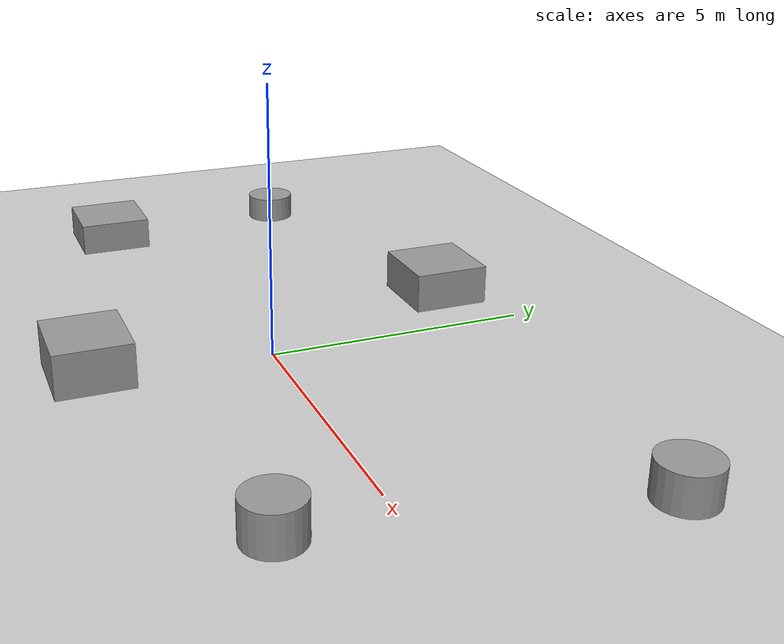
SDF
<sdf version="1.7">
 <world name="default">
  <light name="sun" type="directional">
   <cast_shadows>0</cast_shadows>
   <pose>0 0 10 0 -0 0</pose>
   <diffuse>1 1 1 1</diffuse>
   <specular>0.2 0.2 0.2 1</specular>
   <attenuation>
    <range>1000</range>
    <constant>0.9</constant>
    <linear>0.01</linear>
    <quadratic>0.001</quadratic>
   </attenuation>
   <direction>-0.5 0.5 -1</direction>
   <spot><inner_angle>0</inner_angle><outer_angle>0</outer_angle><falloff>0</falloff></spot>
  </light>
  <physics type="ode">
   <max_step_size>0.001</max_step_size>
   <real_time_factor>1</real_time_factor>
   <real_time_update_rate>1000</real_time_update_rate>
  </physics>
  <scene>
   <ambient>1 1 1 1</ambient>
   <background>1 1 1 1</background>
   <shadows>0</shadows>
   <sky><clouds><speed>12</speed></clouds></sky>
  </scene>
  <spherical_coordinates>
   <surface_model>EARTH_WGS84</surface_model>
   <latitude_deg>43.5007</latitude_deg>
   <longitude_deg>-80.5468</longitude_deg>
   <elevation>329</elevation>
   <heading_deg>0</heading_deg>
  </spherical_coordinates>
  <gravity>0 0 -9.8</gravity>
  <magnetic_field>6e-06 2.3e-05 -4.2e-05</magnetic_field>
  <atmosphere type="adiabatic"/>
  <model name="unit_cylinder">
   <pose>5.67057 -1.88538 0.505767 7e-06 -1.2e-05 0.005709</pose>
   <link name="link">
    <inertial>
     <mass>1</mass>
     <inertia><ixx>0.145833</ixx><ixy>0</ixy><ixz>0</ixz><iyy>0.145833</iyy><iyz>0</iyz><izz>0.125</izz></inertia>
    </inertial>
    <collision name="collision">
     <geometry><cylinder><radius>0.5</radius><length>0.706581</length></cylinder></geometry>
    </collision>
    <visual name="visual">
     <geometry><cylinder><radius>0.5</radius><length>0.706581</length></cylinder></geometry>
     <material>
      <script><name>Gazebo/Grey</name><uri>file://media/materials/scripts/gazebo.material</uri></script>
     </material>
    </visual>
   </link>
  </model>
  <model name="unit_cylinder_clone">
   <pose>6.81941 3.85578 0.48463 1.5e-05 -4e-06 0.009417</pose>
   <link name="link">
    <inertial>
     <mass>1</mass>
     <inertia><ixx>0.145833</ixx><ixy>0</ixy><ixz>0</ixz><iyy>0.145833</iyy><iyz>0</iyz><izz>0.125</izz></inertia>
    </inertial>
    <collision name="collision">
     <geometry><cylinder><radius>0.523829</radius><length>0.664291</length></cylinder></geometry>
    </collision>
    <visual name="visual">
     <geometry><cylinder><radius>0.523829</radius><length>0.664291</length></cylinder></geometry>
     <material>
      <script><name>Gazebo/Grey</name><uri>file://media/materials/scripts/gazebo.material</uri></script>
     </material>
    </visual>
   </link>
  </model>
  <model name="unit_cylinder_clone_0">
   <pose>-7.13338 2.34471 0.415911 4.1e-05 -1.8e-05 0.007127</pose>
   <link name="link">
    <inertial>
     <mass>1</mass>
     <inertia><ixx>0.145833</ixx><ixy>0</ixy><ixz>0</ixz><iyy>0.145833</iyy><iyz>0</iyz><izz>0.125</izz></inertia>
    </inertial>
    <collision name="collision">
     <geometry><cylinder><radius>0.5</radius><length>0.526857</length></cylinder></geometry>
    </collision>
    <visual name="visual">
     <geometry><cylinder><radius>0.5</radius><length>0.526857</length></cylinder></geometry>
     <material>
      <script><name>Gazebo/Grey</name><uri>file://media/materials/scripts/gazebo.material</uri></script>
     </material>
    </visual>
   </link>
  </model>
  <model name="unit_box">
   <pose>-0.060178 -3.32377 0.565893 0 -0 0.001368</pose>
   <link name="link">
    <inertial>
     <mass>1</mass>
     <inertia>
      <ixx>0.166667</ixx>
      <ixy>0</ixy>
      <ixz>0</ixz>
      <iyy>0.166667</iyy>
      <iyz>0</iyz>
      <izz>0.166667</izz>
     </inertia>
    </inertial>
    <collision name="collision"><geometry><box><size>1.53025 1.39328 0.826826</size></box></geometry></collision>
    <visual name="visual">
     <geometry><box><size>1.53025 1.39328 0.826826</size></box></geometry>
     <material>
      <script><name>Gazebo/Grey</name><uri>file://media/materials/scripts/gazebo.material</uri></script>
     </material>
    </visual>
   </link>
  </model>
  <model name="unit_box_clone">
   <pose>-6.73951 -1.61392 0.471319 1e-06 5e-06 0.001411</pose>
   <link name="link">
    <inertial>
     <mass>1</mass>
     <inertia>
      <ixx>0.166667</ixx>
      <ixy>0</ixy>
      <ixz>0</ixz>
      <iyy>0.166667</iyy>
      <iyz>0</iyz>
      <izz>0.166667</izz>
     </inertia>
    </inertial>
    <collision name="collision"><geometry><box><size>1.47917 1.43799 0.637681</size></box></geometry></collision>
    <visual name="visual">
     <geometry><box><size>1.47917 1.43799 0.637681</size></box></geometry>
     <material>
      <script><name>Gazebo/Grey</name><uri>file://media/materials/scripts/gazebo.material</uri></script>
     </material>
    </visual>
   </link>
  </model>
  <model name="unit_box_clone_0">
   <pose>-1.22961 3.87607 0.526554 1.2e-05 -0 0.001359</pose>
   <link name="link">
    <inertial>
     <mass>1</mass>
     <inertia>
      <ixx>0.166667</ixx>
      <ixy>0</ixy>
      <ixz>0</ixz>
      <iyy>0.166667</iyy>
      <iyz>0</iyz>
      <izz>0.166667</izz>
     </inertia>
    </inertial>
    <collision name="collision"><geometry><box><size>1.47327 1.45514 0.748164</size></box></geometry></collision>
    <visual name="visual">
     <geometry><box><size>1.47327 1.45514 0.748164</size></box></geometry>
     <material>
      <script><name>Gazebo/Grey</name><uri>file://media/materials/scripts/gazebo.material</uri></script>
     </material>
    </visual>
   </link>
  </model>
  <model name="ground_plane">
   <static>1</static>
   <link name="link">
    <collision name="collision">
     <geometry><plane><normal>0 0 1</normal><size>100 100</size></plane></geometry>
     <surface>
      <contact><collide_bitmask>65535</collide_bitmask></contact>
      <friction><ode><mu>100</mu><mu2>50</mu2></ode></friction>
     </surface>
    </collision>
    <visual name="visual">
     <cast_shadows>0</cast_shadows>
     <geometry><plane><normal>0 0 1</normal><size>100 100</size></plane></geometry>
     <material>
      <script><uri>file://media/materials/scripts/gazebo.material</uri><name>Gazebo/Grey</name></script>
     </material>
    </visual>
   </link>
   <pose>5.64486 1.76506 0 0 -0 0</pose>
  </model>
 </world>
</sdf>
